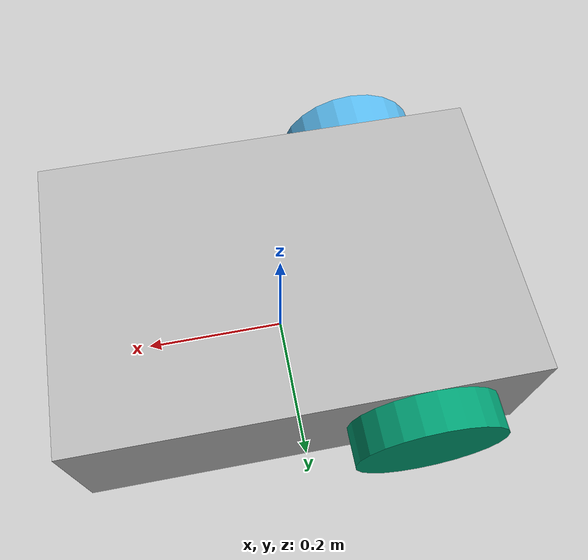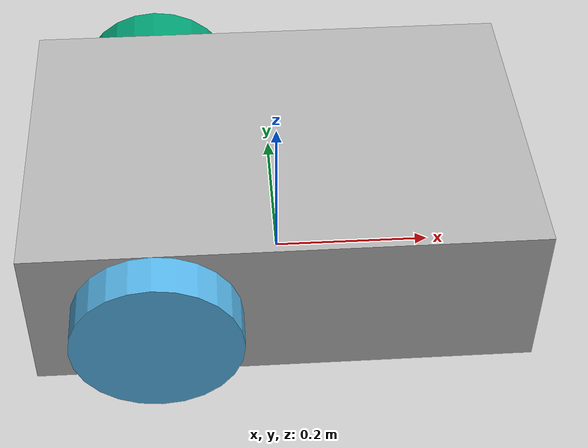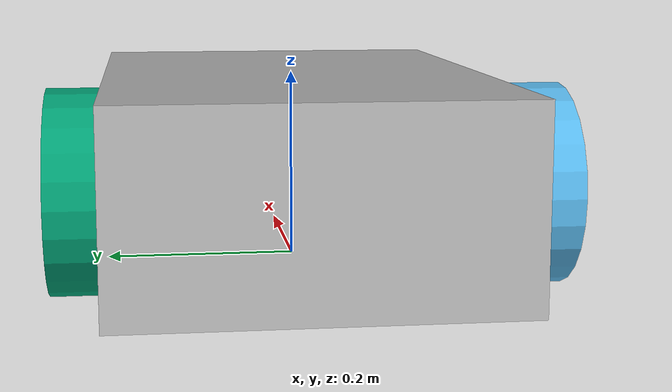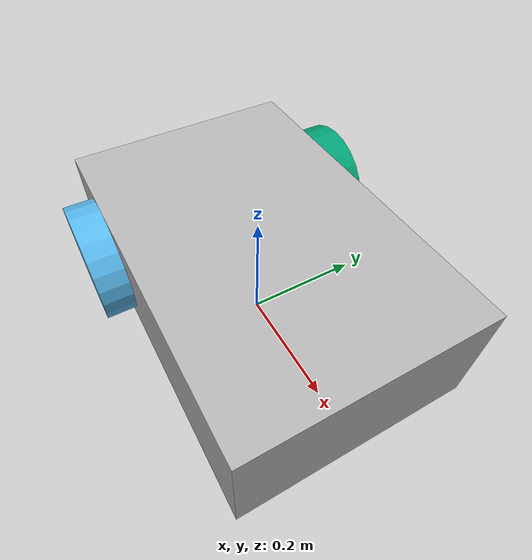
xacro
<?xml version="1.0"?>
<robot name="mobilerobot" xmlns:xacro="http://www.ros.org/wiki/xacro"> <!-- using xacro is very usefull because we can make reusable variables and functions(macros)-->

    <!--This file is the main entry point so it has the robot name-->
    <!--This is modular programming we split out urdfs in multiple files-->
    <xacro:include filename="common_properties.urdf.xacro"/>
    <xacro:include filename="mobile_base.xacro"/>
</robot>

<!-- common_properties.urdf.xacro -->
<robot xmlns:xacro="http://www.ros.org/wiki/xacro">
 <!--Dont give name since we are going to include this file in our main file (mobile_robot.urdf.xacro)-->

    <!--materials are used to colour the links (rigid shapes)-->

    <material name="green">
        <color rgba="0 0.6 0 1"/>
    </material>
    <material name="grey">
        <color rgba="0.7 0.7 0.7 1" />
    </material>

</robot>

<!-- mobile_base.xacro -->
<robot xmlns:xacro="http://www.ros.org/wiki/xacro">
 <!--Dont give name since we are going to include this file in our main file (mobile_robot.urdf.xacro)-->

    <!-- Xacro properties are just variables and these variables are constant-->

    <xacro:property name="base_length" value="0.6"/>
    <xacro:property name="base_width" value="0.4" />
    <xacro:property name="base_height" value="0.2" />
    <xacro:property name="wheel_rad" value="0.1" />
    <xacro:property name="wheel_len" value="0.05"/>

    <!--1. Links are rigid shapes like box, cylinder etc
        2. Frames are enters of the links
        3. TF(Transforms) is the relationship betweem 2 frames
    -->

    <link name="base_link">
        <visual>
            <geometry>
                <box size="${base_length} ${base_width} ${base_height}"/>
            </geometry>
            <origin xyz="0 0 0" rpy="0 0 0"/>
            <material name="grey"/>
        </visual>
    </link>

    <!--Functions? Yes xacro:macro-->

    <xacro:macro name="wheel_link_mac" params="wheel_prefix"> <!-- can multiple parameter with space like params="bla bla2"-->
        <link name="${wheel_prefix}_wheel_link" >
            <visual>
                <geometry>
                    <cylinder radius="${wheel_rad}" length="${wheel_len}"/>
                </geometry>
                <origin xyz="0 0 0" rpy="${pi / 2} 0 0"/>
            </visual>
        </link>
    </xacro:macro>

    <!--Calling the macro(function)-->
    <xacro:wheel_link_mac wheel_prefix="right"/>
    <xacro:wheel_link_mac wheel_prefix="left"/>

    <link name="front_wheel_link" >
        <visual>
            <geometry>
                <sphere radius="${wheel_len}"/>
            </geometry>
            <origin xyz="0 0 0" rpy="${pi / 2} 0 0"/>
        </visual>
    </link>

    <link name="base_footprint" />

    <!--Joints are used to joint 2 frames to be precise-->

    <joint name="base_right_wheel_joint" type="continuous">
        <parent link ="base_link"/>
        <child link = "right_wheel_link" />
        <origin xyz="${-base_length / 4} ${-(base_width + wheel_len) / 2} 0" rpy="0 0 0"/>
        <axis xyz="0 1 0" />
    </joint>

    <joint name="base_left_wheel_joint" type="continuous">
        <parent link ="base_link"/>
        <child link = "left_wheel_link" />
        <origin xyz="${-base_length / 4} ${(base_width + wheel_len) / 2} 0" rpy="0 0 0"/>
        <axis xyz="0 1 0" />
    </joint>

    <joint name="base_front_wheel_joint" type="fixed">
        <parent link="base_link"/>
        <child link="front_wheel_link"/>
        <origin xyz="${base_length / 4} 0 ${-wheel_len}" rpy="0 0 0"/>
        <axis xyz="0 1 0"/>
    </joint>

    <joint name="base_joint" type="fixed">
        <parent link = "base_footprint"/>
        <child link="base_link"/>
        <origin xyz="0 0 0.1" rpy="0 0 0"/>
    </joint>

</robot>
